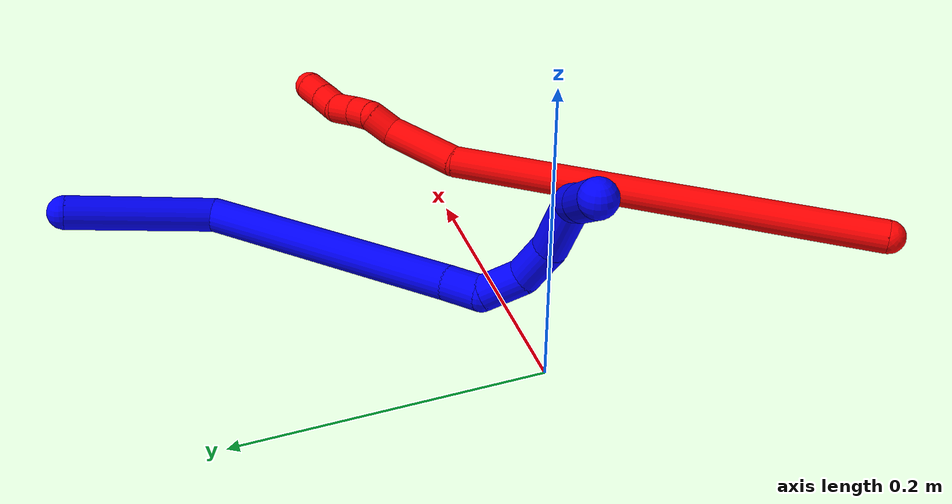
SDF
<sdf version="1.7">
 <world name="default">
  <plugin name="TubeGeneratorPlugin" filename="libtube_generator_plugin.so"/>
  <model name="photoneo_s_sensor">
   <static>1</static>
   <pose>0 0 2 1.57079 1.57079 3.14159</pose>
   <link name="link">
    <inertial><mass>0.1</mass></inertial>
    <sensor name="sensor" type="depth">
     <update_rate>30</update_rate>
     <camera>
      <horizontal_fov>1.22</horizontal_fov>
      <image><width>1920</width><height>1200</height><format>B8G8R8</format></image>
      <clip><near>0.1</near><far>4</far></clip>
      <depth_camera><output>points</output></depth_camera>
     </camera>
     <plugin name="camera_plugin" filename="libgazebo_ros_depth_camera.so">
      <baseline>0.2</baseline>
      <alwaysOn>1</alwaysOn>
      <updateRate>0.0</updateRate>
      <cameraName>camera_ir</cameraName>
      <imageTopicName>/camera/color/image_raw</imageTopicName>
      <cameraInfoTopicName>/camera/color/camera_info</cameraInfoTopicName>
      <depthImageTopicName>/camera/depth/image_raw</depthImageTopicName>
      <depthImageCameraInfoTopicName>/camera/depth/camera_info</depthImageCameraInfoTopicName>
      <pointCloudTopicName>/camera/depth/points</pointCloudTopicName>
      <frameName>fr_optical</frameName>
      <pointCloudCutoff>0.1</pointCloudCutoff>
      <pointCloudCutoffMax>2.0</pointCloudCutoffMax>
      <distortionK1>0</distortionK1>
      <distortionK2>0</distortionK2>
      <distortionK3>0</distortionK3>
      <distortionT1>0</distortionT1>
      <distortionT2>0</distortionT2>
      <CxPrime>0</CxPrime>
      <Cx>0</Cx>
      <Cy>0</Cy>
      <focalLength>0</focalLength>
      <hackBaseline>0</hackBaseline>
     </plugin>
    </sensor>
   </link>
  </model>
  <gravity>0 0 -9.8</gravity>
  <magnetic_field>6e-06 2.3e-05 -4.2e-05</magnetic_field>
  <atmosphere type="adiabatic"/>
  <physics name="default_physics" default="0" type="ode">
   <max_step_size>0.003</max_step_size>
   <real_time_factor>1</real_time_factor>
   <real_time_update_rate>1000</real_time_update_rate>
   <max_contacts>10000</max_contacts>
   <ode>
    <solver>
     <type>quick</type>
     <iters>100</iters>
     <sor>1.3</sor>
     <use_dynamic_moi_rescaling>0</use_dynamic_moi_rescaling>
    </solver>
    <constraints>
     <contact_max_correcting_vel>0</contact_max_correcting_vel>
     <contact_surface_layer>0.001</contact_surface_layer>
     <cfm>0</cfm>
     <erp>0.2</erp>
    </constraints>
   </ode>
  </physics>
  <scene><ambient>0.4 0.4 0.4 1</ambient><background>0.7 0.7 0.7 1</background><shadows>0</shadows></scene>
  <audio><device>default</device></audio>
  <spherical_coordinates>
   <surface_model>EARTH_WGS84</surface_model>
   <latitude_deg>0</latitude_deg>
   <longitude_deg>0</longitude_deg>
   <elevation>0</elevation>
   <heading_deg>0</heading_deg>
  </spherical_coordinates>
  <model name="bin">
   <static>1</static>
   <link name="bottom">
    <collision name="collision-bottom">
     <pose>0 0 -0.01 0 -0 0</pose>
     <geometry><box><size>0.8 0.6 0.02</size></box></geometry>
     <surface>
      <friction><ode><mu>100</mu><mu2>100</mu2></ode></friction>
      <contact><collide_bitmask>65535</collide_bitmask></contact>
     </surface>
    </collision>
   </link>
   <link name="west_wall">
    <collision name="collision-west_wall">
     <pose>-0.41 0 0.1 0 -0 0</pose>
     <geometry><box><size>0.02 0.6 0.2</size></box></geometry>
     <surface>
      <friction><ode><mu>100</mu><mu2>100</mu2></ode></friction>
      <contact><collide_bitmask>65535</collide_bitmask></contact>
     </surface>
    </collision>
   </link>
   <link name="east_wall">
    <collision name="collision-east_wall">
     <pose>0.41 0 0.1 0 -0 0</pose>
     <geometry><box><size>0.02 0.6 0.2</size></box></geometry>
     <surface>
      <friction><ode><mu>100</mu><mu2>100</mu2></ode></friction>
      <contact><collide_bitmask>65535</collide_bitmask></contact>
     </surface>
    </collision>
   </link>
   <link name="south_wall">
    <collision name="collision-south_wall">
     <pose>0 -0.31 0.1 0 -0 0</pose>
     <geometry><box><size>0.8 0.02 0.2</size></box></geometry>
     <surface>
      <friction><ode><mu>100</mu><mu2>100</mu2></ode></friction>
      <contact><collide_bitmask>65535</collide_bitmask></contact>
     </surface>
    </collision>
   </link>
   <link name="north_wall">
    <collision name="collision-north_wall">
     <pose>0 0.31 0.1 0 -0 0</pose>
     <geometry><box><size>0.8 0.02 0.2</size></box></geometry>
     <surface>
      <friction><ode><mu>100</mu><mu2>100</mu2></ode></friction>
      <contact><collide_bitmask>65535</collide_bitmask></contact>
     </surface>
    </collision>
   </link>
  </model>
  <model name="1">
   <static>0</static>
   <link name="1">
    <collision name="collision-cylinder-e_1_1_4">
     <pose>-0.006733 -0.051503 -0.009308 1.7496 -0.12795 -0.153057</pose>
     <geometry><cylinder><radius>0.0125</radius><length>0.105539</length></cylinder></geometry>
     <surface>
      <friction><ode><mu>1.16</mu><mu2>1.16</mu2><slip1>0</slip1><slip2>0</slip2></ode></friction>
      <contact><ode><kp>1e+06</kp><kd>1</kd><max_vel>0</max_vel><min_depth>0.001</min_depth></ode></contact>
     </surface>
    </collision>
    <visual name="visual-cylinder-e_1_1_4">
     <pose>-0.006733 -0.051503 -0.009308 1.7496 -0.12795 -0.153057</pose>
     <geometry><cylinder><radius>0.0125</radius><length>0.105539</length></cylinder></geometry>
     <material><ambient>0 0 1 1</ambient></material>
    </visual>
    <collision name="collision-cylinder-e_2_4_5">
     <pose>-0.082023 -0.171655 -0.020082 1.59214 -0.784616 -0.799808</pose>
     <geometry><cylinder><radius>0.0125</radius><length>0.194058</length></cylinder></geometry>
     <surface>
      <friction><ode><mu>1.16</mu><mu2>1.16</mu2><slip1>0</slip1><slip2>0</slip2></ode></friction>
      <contact><ode><kp>1e+06</kp><kd>1</kd><max_vel>0</max_vel><min_depth>0.001</min_depth></ode></contact>
     </surface>
    </collision>
    <visual name="visual-cylinder-e_2_4_5">
     <pose>-0.082023 -0.171655 -0.020082 1.59214 -0.784616 -0.799808</pose>
     <geometry><cylinder><radius>0.0125</radius><length>0.194058</length></cylinder></geometry>
     <material><ambient>0 0 1 1</ambient></material>
    </visual>
    <collision name="collision-cylinder-e_3_5_6">
     <pose>-0.161166 -0.248857 -0.020877 1.49267 -0.889694 -0.830445</pose>
     <geometry><cylinder><radius>0.0125</radius><length>0.027254</length></cylinder></geometry>
     <surface>
      <friction><ode><mu>1.16</mu><mu2>1.16</mu2><slip1>0</slip1><slip2>0</slip2></ode></friction>
      <contact><ode><kp>1e+06</kp><kd>1</kd><max_vel>0</max_vel><min_depth>0.001</min_depth></ode></contact>
     </surface>
    </collision>
    <visual name="visual-cylinder-e_3_5_6">
     <pose>-0.161166 -0.248857 -0.020877 1.49267 -0.889694 -0.830445</pose>
     <geometry><cylinder><radius>0.0125</radius><length>0.027254</length></cylinder></geometry>
     <material><ambient>0 0 1 1</ambient></material>
    </visual>
    <collision name="collision-cylinder-e_4_6_7">
     <pose>-0.175565 -0.270858 -0.013758 1.12355 -0.250273 -0.158025</pose>
     <geometry><cylinder><radius>0.0125</radius><length>0.030787</length></cylinder></geometry>
     <surface>
      <friction><ode><mu>1.16</mu><mu2>1.16</mu2><slip1>0</slip1><slip2>0</slip2></ode></friction>
      <contact><ode><kp>1e+06</kp><kd>1</kd><max_vel>0</max_vel><min_depth>0.001</min_depth></ode></contact>
     </surface>
    </collision>
    <visual name="visual-cylinder-e_4_6_7">
     <pose>-0.175565 -0.270858 -0.013758 1.12355 -0.250273 -0.158025</pose>
     <geometry><cylinder><radius>0.0125</radius><length>0.030787</length></cylinder></geometry>
     <material><ambient>0 0 1 1</ambient></material>
    </visual>
    <collision name="collision-cylinder-e_5_7_8">
     <pose>-0.184226 -0.291611 0.00585 0.50692 -0.311691 -0.081353</pose>
     <geometry><cylinder><radius>0.0125</radius><length>0.031624</length></cylinder></geometry>
     <surface>
      <friction><ode><mu>1.16</mu><mu2>1.16</mu2><slip1>0</slip1><slip2>0</slip2></ode></friction>
      <contact><ode><kp>1e+06</kp><kd>1</kd><max_vel>0</max_vel><min_depth>0.001</min_depth></ode></contact>
     </surface>
    </collision>
    <visual name="visual-cylinder-e_5_7_8">
     <pose>-0.184226 -0.291611 0.00585 0.50692 -0.311691 -0.081353</pose>
     <geometry><cylinder><radius>0.0125</radius><length>0.031624</length></cylinder></geometry>
     <material><ambient>0 0 1 1</ambient></material>
    </visual>
    <collision name="collision-cylinder-e_6_8_9">
     <pose>-0.195212 -0.303577 0.03913 0.227545 -0.288793 -0.033227</pose>
     <geometry><cylinder><radius>0.0125</radius><length>0.043094</length></cylinder></geometry>
     <surface>
      <friction><ode><mu>1.16</mu><mu2>1.16</mu2><slip1>0</slip1><slip2>0</slip2></ode></friction>
      <contact><ode><kp>1e+06</kp><kd>1</kd><max_vel>0</max_vel><min_depth>0.001</min_depth></ode></contact>
     </surface>
    </collision>
    <visual name="visual-cylinder-e_6_8_9">
     <pose>-0.195212 -0.303577 0.03913 0.227545 -0.288793 -0.033227</pose>
     <geometry><cylinder><radius>0.0125</radius><length>0.043094</length></cylinder></geometry>
     <material><ambient>0 0 1 1</ambient></material>
    </visual>
    <collision name="collision-cylinder-e_7_9_10">
     <pose>-0.211715 -0.306639 0.066136 -0.228056 -0.972478 0.12092</pose>
     <geometry><cylinder><radius>0.0125</radius><length>0.025094</length></cylinder></geometry>
     <surface>
      <friction><ode><mu>1.16</mu><mu2>1.16</mu2><slip1>0</slip1><slip2>0</slip2></ode></friction>
      <contact><ode><kp>1e+06</kp><kd>1</kd><max_vel>0</max_vel><min_depth>0.001</min_depth></ode></contact>
     </surface>
    </collision>
    <visual name="visual-cylinder-e_7_9_10">
     <pose>-0.211715 -0.306639 0.066136 -0.228056 -0.972478 0.12092</pose>
     <geometry><cylinder><radius>0.0125</radius><length>0.025094</length></cylinder></geometry>
     <material><ambient>0 0 1 1</ambient></material>
    </visual>
    <collision name="collision-cylinder-e_8_10_2">
     <pose>-0.238929 -0.301977 0.085647 -0.238098 -0.913807 0.117469</pose>
     <geometry><cylinder><radius>0.0125</radius><length>0.042551</length></cylinder></geometry>
     <surface>
      <friction><ode><mu>1.16</mu><mu2>1.16</mu2><slip1>0</slip1><slip2>0</slip2></ode></friction>
      <contact><ode><kp>1e+06</kp><kd>1</kd><max_vel>0</max_vel><min_depth>0.001</min_depth></ode></contact>
     </surface>
    </collision>
    <visual name="visual-cylinder-e_8_10_2">
     <pose>-0.238929 -0.301977 0.085647 -0.238098 -0.913807 0.117469</pose>
     <geometry><cylinder><radius>0.0125</radius><length>0.042551</length></cylinder></geometry>
     <material><ambient>0 0 1 1</ambient></material>
    </visual>
    <collision name="collision-sphere-2">
     <pose>-0.255776 -0.298912 0.098274 0 -0 0</pose>
     <geometry><sphere><radius>0.0125</radius></sphere></geometry>
     <surface>
      <friction><ode><mu>1.16</mu><mu2>1.16</mu2><slip1>0</slip1><slip2>0</slip2></ode></friction>
      <contact><ode><kp>1e+06</kp><kd>1</kd><max_vel>0</max_vel><min_depth>0.001</min_depth></ode></contact>
     </surface>
    </collision>
    <visual name="visual-sphere-2">
     <pose>-0.255776 -0.298912 0.098274 0 -0 0</pose>
     <geometry><sphere><radius>0.0125</radius></sphere></geometry>
     <material><ambient>0 0 1 1</ambient></material>
    </visual>
    <collision name="collision-sphere-10">
     <pose>-0.222083 -0.305041 0.07302 0 -0 0</pose>
     <geometry><sphere><radius>0.0125</radius></sphere></geometry>
     <surface>
      <friction><ode><mu>1.16</mu><mu2>1.16</mu2><slip1>0</slip1><slip2>0</slip2></ode></friction>
      <contact><ode><kp>1e+06</kp><kd>1</kd><max_vel>0</max_vel><min_depth>0.001</min_depth></ode></contact>
     </surface>
    </collision>
    <visual name="visual-sphere-10">
     <pose>-0.222083 -0.305041 0.07302 0 -0 0</pose>
     <geometry><sphere><radius>0.0125</radius></sphere></geometry>
     <material><ambient>0 0 1 1</ambient></material>
    </visual>
    <collision name="collision-sphere-9">
     <pose>-0.201348 -0.308237 0.059252 0 -0 0</pose>
     <geometry><sphere><radius>0.0125</radius></sphere></geometry>
     <surface>
      <friction><ode><mu>1.16</mu><mu2>1.16</mu2><slip1>0</slip1><slip2>0</slip2></ode></friction>
      <contact><ode><kp>1e+06</kp><kd>1</kd><max_vel>0</max_vel><min_depth>0.001</min_depth></ode></contact>
     </surface>
    </collision>
    <visual name="visual-sphere-9">
     <pose>-0.201348 -0.308237 0.059252 0 -0 0</pose>
     <geometry><sphere><radius>0.0125</radius></sphere></geometry>
     <material><ambient>0 0 1 1</ambient></material>
    </visual>
    <collision name="collision-sphere-4">
     <pose>-0.013467 -0.103007 -0.018617 0 -0 0</pose>
     <geometry><sphere><radius>0.0125</radius></sphere></geometry>
     <surface>
      <friction><ode><mu>1.16</mu><mu2>1.16</mu2><slip1>0</slip1><slip2>0</slip2></ode></friction>
      <contact><ode><kp>1e+06</kp><kd>1</kd><max_vel>0</max_vel><min_depth>0.001</min_depth></ode></contact>
     </surface>
    </collision>
    <visual name="visual-sphere-4">
     <pose>-0.013467 -0.103007 -0.018617 0 -0 0</pose>
     <geometry><sphere><radius>0.0125</radius></sphere></geometry>
     <material><ambient>0 0 1 1</ambient></material>
    </visual>
    <collision name="collision-sphere-1">
     <geometry><sphere><radius>0.0125</radius></sphere></geometry>
     <surface>
      <friction><ode><mu>1.16</mu><mu2>1.16</mu2><slip1>0</slip1><slip2>0</slip2></ode></friction>
      <contact><ode><kp>1e+06</kp><kd>1</kd><max_vel>0</max_vel><min_depth>0.001</min_depth></ode></contact>
     </surface>
    </collision>
    <visual name="visual-sphere-1">
     <geometry><sphere><radius>0.0125</radius></sphere></geometry>
     <material><ambient>0 0 1 1</ambient></material>
    </visual>
    <collision name="collision-sphere-8">
     <pose>-0.189075 -0.298918 0.019007 0 -0 0</pose>
     <geometry><sphere><radius>0.0125</radius></sphere></geometry>
     <surface>
      <friction><ode><mu>1.16</mu><mu2>1.16</mu2><slip1>0</slip1><slip2>0</slip2></ode></friction>
      <contact><ode><kp>1e+06</kp><kd>1</kd><max_vel>0</max_vel><min_depth>0.001</min_depth></ode></contact>
     </surface>
    </collision>
    <visual name="visual-sphere-8">
     <pose>-0.189075 -0.298918 0.019007 0 -0 0</pose>
     <geometry><sphere><radius>0.0125</radius></sphere></geometry>
     <material><ambient>0 0 1 1</ambient></material>
    </visual>
    <collision name="collision-sphere-5">
     <pose>-0.150579 -0.240303 -0.021547 0 -0 0</pose>
     <geometry><sphere><radius>0.0125</radius></sphere></geometry>
     <surface>
      <friction><ode><mu>1.16</mu><mu2>1.16</mu2><slip1>0</slip1><slip2>0</slip2></ode></friction>
      <contact><ode><kp>1e+06</kp><kd>1</kd><max_vel>0</max_vel><min_depth>0.001</min_depth></ode></contact>
     </surface>
    </collision>
    <visual name="visual-sphere-5">
     <pose>-0.150579 -0.240303 -0.021547 0 -0 0</pose>
     <geometry><sphere><radius>0.0125</radius></sphere></geometry>
     <material><ambient>0 0 1 1</ambient></material>
    </visual>
    <collision name="collision-sphere-6">
     <pose>-0.171752 -0.257411 -0.020208 0 -0 0</pose>
     <geometry><sphere><radius>0.0125</radius></sphere></geometry>
     <surface>
      <friction><ode><mu>1.16</mu><mu2>1.16</mu2><slip1>0</slip1><slip2>0</slip2></ode></friction>
      <contact><ode><kp>1e+06</kp><kd>1</kd><max_vel>0</max_vel><min_depth>0.001</min_depth></ode></contact>
     </surface>
    </collision>
    <visual name="visual-sphere-6">
     <pose>-0.171752 -0.257411 -0.020208 0 -0 0</pose>
     <geometry><sphere><radius>0.0125</radius></sphere></geometry>
     <material><ambient>0 0 1 1</ambient></material>
    </visual>
    <collision name="collision-sphere-7">
     <pose>-0.179377 -0.284305 -0.007308 0 -0 0</pose>
     <geometry><sphere><radius>0.0125</radius></sphere></geometry>
     <surface>
      <friction><ode><mu>1.16</mu><mu2>1.16</mu2><slip1>0</slip1><slip2>0</slip2></ode></friction>
      <contact><ode><kp>1e+06</kp><kd>1</kd><max_vel>0</max_vel><min_depth>0.001</min_depth></ode></contact>
     </surface>
    </collision>
    <visual name="visual-sphere-7">
     <pose>-0.179377 -0.284305 -0.007308 0 -0 0</pose>
     <geometry><sphere><radius>0.0125</radius></sphere></geometry>
     <material><ambient>0 0 1 1</ambient></material>
    </visual>
    <inertial>
     <pose>-0.112286 -0.193432 0.002606 0 -0 0</pose>
     <mass>0.5</mass>
     <inertia>
      <ixx>7.7e-05</ixx>
      <ixy>0</ixy>
      <ixz>0</ixz>
      <iyy>-4.1e-05</iyy>
      <iyz>0</iyz>
      <izz>0.001014</izz>
     </inertia>
    </inertial>
   </link>
   <pose>0.244479 0.274769 0.028815 -0.020195 -0.003395 0.004288</pose>
  </model>
  <model name="2">
   <static>0</static>
   <link name="2">
    <collision name="collision-cylinder-e_1_1_4">
     <pose>-0.091149 0.087254 -0.108705 -2.46522 -0.579114 1.40565</pose>
     <geometry><cylinder><radius>0.0125</radius><length>0.333095</length></cylinder></geometry>
     <surface>
      <friction><ode><mu>1.16</mu><mu2>1.16</mu2><slip1>0</slip1><slip2>0</slip2></ode></friction>
      <contact><ode><kp>1e+06</kp><kd>1</kd><max_vel>0</max_vel><min_depth>0.001</min_depth></ode></contact>
     </surface>
    </collision>
    <visual name="visual-cylinder-e_1_1_4">
     <pose>-0.091149 0.087254 -0.108705 -2.46522 -0.579114 1.40565</pose>
     <geometry><cylinder><radius>0.0125</radius><length>0.333095</length></cylinder></geometry>
     <material><ambient>1 0 0 1</ambient></material>
    </visual>
    <collision name="collision-cylinder-e_2_4_5">
     <pose>-0.191604 0.19691 -0.237869 -2.31091 -0.297661 0.655475</pose>
     <geometry><cylinder><radius>0.0125</radius><length>0.063468</length></cylinder></geometry>
     <surface>
      <friction><ode><mu>1.16</mu><mu2>1.16</mu2><slip1>0</slip1><slip2>0</slip2></ode></friction>
      <contact><ode><kp>1e+06</kp><kd>1</kd><max_vel>0</max_vel><min_depth>0.001</min_depth></ode></contact>
     </surface>
    </collision>
    <visual name="visual-cylinder-e_2_4_5">
     <pose>-0.191604 0.19691 -0.237869 -2.31091 -0.297661 0.655475</pose>
     <geometry><cylinder><radius>0.0125</radius><length>0.063468</length></cylinder></geometry>
     <material><ambient>1 0 0 1</ambient></material>
    </visual>
    <collision name="collision-cylinder-e_3_5_6">
     <pose>-0.206101 0.228601 -0.261329 -1.88328 -0.488603 0.659955</pose>
     <geometry><cylinder><radius>0.0125</radius><length>0.022112</length></cylinder></geometry>
     <surface>
      <friction><ode><mu>1.16</mu><mu2>1.16</mu2><slip1>0</slip1><slip2>0</slip2></ode></friction>
      <contact><ode><kp>1e+06</kp><kd>1</kd><max_vel>0</max_vel><min_depth>0.001</min_depth></ode></contact>
     </surface>
    </collision>
    <visual name="visual-cylinder-e_3_5_6">
     <pose>-0.206101 0.228601 -0.261329 -1.88328 -0.488603 0.659955</pose>
     <geometry><cylinder><radius>0.0125</radius><length>0.022112</length></cylinder></geometry>
     <material><ambient>1 0 0 1</ambient></material>
    </visual>
    <collision name="collision-cylinder-e_4_6_7">
     <pose>-0.212559 0.243388 -0.272633 -2.55684 -0.126724 0.415486</pose>
     <geometry><cylinder><radius>0.0125</radius><length>0.020077</length></cylinder></geometry>
     <surface>
      <friction><ode><mu>1.16</mu><mu2>1.16</mu2><slip1>0</slip1><slip2>0</slip2></ode></friction>
      <contact><ode><kp>1e+06</kp><kd>1</kd><max_vel>0</max_vel><min_depth>0.001</min_depth></ode></contact>
     </surface>
    </collision>
    <visual name="visual-cylinder-e_4_6_7">
     <pose>-0.212559 0.243388 -0.272633 -2.55684 -0.126724 0.415486</pose>
     <geometry><cylinder><radius>0.0125</radius><length>0.020077</length></cylinder></geometry>
     <material><ambient>1 0 0 1</ambient></material>
    </visual>
    <collision name="collision-cylinder-e_5_7_8">
     <pose>-0.217259 0.254254 -0.288841 -2.54487 -0.344734 1.03021</pose>
     <geometry><cylinder><radius>0.0125</radius><length>0.020306</length></cylinder></geometry>
     <surface>
      <friction><ode><mu>1.16</mu><mu2>1.16</mu2><slip1>0</slip1><slip2>0</slip2></ode></friction>
      <contact><ode><kp>1e+06</kp><kd>1</kd><max_vel>0</max_vel><min_depth>0.001</min_depth></ode></contact>
     </surface>
    </collision>
    <visual name="visual-cylinder-e_5_7_8">
     <pose>-0.217259 0.254254 -0.288841 -2.54487 -0.344734 1.03021</pose>
     <geometry><cylinder><radius>0.0125</radius><length>0.020306</length></cylinder></geometry>
     <material><ambient>1 0 0 1</ambient></material>
    </visual>
    <collision name="collision-cylinder-e_6_8_9">
     <pose>-0.220946 0.267267 -0.303356 -2.2839 -0.025296 0.055314</pose>
     <geometry><cylinder><radius>0.0125</radius><length>0.020217</length></cylinder></geometry>
     <surface>
      <friction><ode><mu>1.16</mu><mu2>1.16</mu2><slip1>0</slip1><slip2>0</slip2></ode></friction>
      <contact><ode><kp>1e+06</kp><kd>1</kd><max_vel>0</max_vel><min_depth>0.001</min_depth></ode></contact>
     </surface>
    </collision>
    <visual name="visual-cylinder-e_6_8_9">
     <pose>-0.220946 0.267267 -0.303356 -2.2839 -0.025296 0.055314</pose>
     <geometry><cylinder><radius>0.0125</radius><length>0.020217</length></cylinder></geometry>
     <material><ambient>1 0 0 1</ambient></material>
    </visual>
    <collision name="collision-cylinder-e_7_9_2">
     <pose>-0.222221 0.282904 -0.316481 -2.25451 -0.098567 0.206887</pose>
     <geometry><cylinder><radius>0.0125</radius><length>0.020726</length></cylinder></geometry>
     <surface>
      <friction><ode><mu>1.16</mu><mu2>1.16</mu2><slip1>0</slip1><slip2>0</slip2></ode></friction>
      <contact><ode><kp>1e+06</kp><kd>1</kd><max_vel>0</max_vel><min_depth>0.001</min_depth></ode></contact>
     </surface>
    </collision>
    <visual name="visual-cylinder-e_7_9_2">
     <pose>-0.222221 0.282904 -0.316481 -2.25451 -0.098567 0.206887</pose>
     <geometry><cylinder><radius>0.0125</radius><length>0.020726</length></cylinder></geometry>
     <material><ambient>1 0 0 1</ambient></material>
    </visual>
    <collision name="collision-sphere-2">
     <pose>-0.223241 0.290899 -0.322995 0 -0 0</pose>
     <geometry><sphere><radius>0.0125</radius></sphere></geometry>
     <surface>
      <friction><ode><mu>1.16</mu><mu2>1.16</mu2><slip1>0</slip1><slip2>0</slip2></ode></friction>
      <contact><ode><kp>1e+06</kp><kd>1</kd><max_vel>0</max_vel><min_depth>0.001</min_depth></ode></contact>
     </surface>
    </collision>
    <visual name="visual-sphere-2">
     <pose>-0.223241 0.290899 -0.322995 0 -0 0</pose>
     <geometry><sphere><radius>0.0125</radius></sphere></geometry>
     <material><ambient>1 0 0 1</ambient></material>
    </visual>
    <collision name="collision-sphere-9">
     <pose>-0.221201 0.27491 -0.309966 0 -0 0</pose>
     <geometry><sphere><radius>0.0125</radius></sphere></geometry>
     <surface>
      <friction><ode><mu>1.16</mu><mu2>1.16</mu2><slip1>0</slip1><slip2>0</slip2></ode></friction>
      <contact><ode><kp>1e+06</kp><kd>1</kd><max_vel>0</max_vel><min_depth>0.001</min_depth></ode></contact>
     </surface>
    </collision>
    <visual name="visual-sphere-9">
     <pose>-0.221201 0.27491 -0.309966 0 -0 0</pose>
     <geometry><sphere><radius>0.0125</radius></sphere></geometry>
     <material><ambient>1 0 0 1</ambient></material>
    </visual>
    <collision name="collision-sphere-4">
     <pose>-0.182297 0.174508 -0.217409 0 -0 0</pose>
     <geometry><sphere><radius>0.0125</radius></sphere></geometry>
     <surface>
      <friction><ode><mu>1.16</mu><mu2>1.16</mu2><slip1>0</slip1><slip2>0</slip2></ode></friction>
      <contact><ode><kp>1e+06</kp><kd>1</kd><max_vel>0</max_vel><min_depth>0.001</min_depth></ode></contact>
     </surface>
    </collision>
    <visual name="visual-sphere-4">
     <pose>-0.182297 0.174508 -0.217409 0 -0 0</pose>
     <geometry><sphere><radius>0.0125</radius></sphere></geometry>
     <material><ambient>1 0 0 1</ambient></material>
    </visual>
    <collision name="collision-sphere-1">
     <geometry><sphere><radius>0.0125</radius></sphere></geometry>
     <surface>
      <friction><ode><mu>1.16</mu><mu2>1.16</mu2><slip1>0</slip1><slip2>0</slip2></ode></friction>
      <contact><ode><kp>1e+06</kp><kd>1</kd><max_vel>0</max_vel><min_depth>0.001</min_depth></ode></contact>
     </surface>
    </collision>
    <visual name="visual-sphere-1">
     <geometry><sphere><radius>0.0125</radius></sphere></geometry>
     <material><ambient>1 0 0 1</ambient></material>
    </visual>
    <collision name="collision-sphere-8">
     <pose>-0.22069 0.259624 -0.296745 0 -0 0</pose>
     <geometry><sphere><radius>0.0125</radius></sphere></geometry>
     <surface>
      <friction><ode><mu>1.16</mu><mu2>1.16</mu2><slip1>0</slip1><slip2>0</slip2></ode></friction>
      <contact><ode><kp>1e+06</kp><kd>1</kd><max_vel>0</max_vel><min_depth>0.001</min_depth></ode></contact>
     </surface>
    </collision>
    <visual name="visual-sphere-8">
     <pose>-0.22069 0.259624 -0.296745 0 -0 0</pose>
     <geometry><sphere><radius>0.0125</radius></sphere></geometry>
     <material><ambient>1 0 0 1</ambient></material>
    </visual>
    <collision name="collision-sphere-5">
     <pose>-0.200911 0.219312 -0.258328 0 -0 0</pose>
     <geometry><sphere><radius>0.0125</radius></sphere></geometry>
     <surface>
      <friction><ode><mu>1.16</mu><mu2>1.16</mu2><slip1>0</slip1><slip2>0</slip2></ode></friction>
      <contact><ode><kp>1e+06</kp><kd>1</kd><max_vel>0</max_vel><min_depth>0.001</min_depth></ode></contact>
     </surface>
    </collision>
    <visual name="visual-sphere-5">
     <pose>-0.200911 0.219312 -0.258328 0 -0 0</pose>
     <geometry><sphere><radius>0.0125</radius></sphere></geometry>
     <material><ambient>1 0 0 1</ambient></material>
    </visual>
    <collision name="collision-sphere-6">
     <pose>-0.21129 0.237891 -0.26433 0 -0 0</pose>
     <geometry><sphere><radius>0.0125</radius></sphere></geometry>
     <surface>
      <friction><ode><mu>1.16</mu><mu2>1.16</mu2><slip1>0</slip1><slip2>0</slip2></ode></friction>
      <contact><ode><kp>1e+06</kp><kd>1</kd><max_vel>0</max_vel><min_depth>0.001</min_depth></ode></contact>
     </surface>
    </collision>
    <visual name="visual-sphere-6">
     <pose>-0.21129 0.237891 -0.26433 0 -0 0</pose>
     <geometry><sphere><radius>0.0125</radius></sphere></geometry>
     <material><ambient>1 0 0 1</ambient></material>
    </visual>
    <collision name="collision-sphere-7">
     <pose>-0.213828 0.248884 -0.280937 0 -0 0</pose>
     <geometry><sphere><radius>0.0125</radius></sphere></geometry>
     <surface>
      <friction><ode><mu>1.16</mu><mu2>1.16</mu2><slip1>0</slip1><slip2>0</slip2></ode></friction>
      <contact><ode><kp>1e+06</kp><kd>1</kd><max_vel>0</max_vel><min_depth>0.001</min_depth></ode></contact>
     </surface>
    </collision>
    <visual name="visual-sphere-7">
     <pose>-0.213828 0.248884 -0.280937 0 -0 0</pose>
     <geometry><sphere><radius>0.0125</radius></sphere></geometry>
     <material><ambient>1 0 0 1</ambient></material>
    </visual>
    <inertial>
     <pose>-0.129662 0.135864 -0.162231 0 -0 0</pose>
     <mass>0.5</mass>
     <inertia>
      <ixx>0.003003</ixx>
      <ixy>0</ixy>
      <ixz>0</ixz>
      <iyy>0.003229</iyy>
      <iyz>0</iyz>
      <izz>3.4e-05</izz>
     </inertia>
    </inertial>
   </link>
   <pose>0.040728 -0.284126 0.0125 0.807513 0.130283 -1.24729</pose>
  </model>
 </world>
</sdf>
